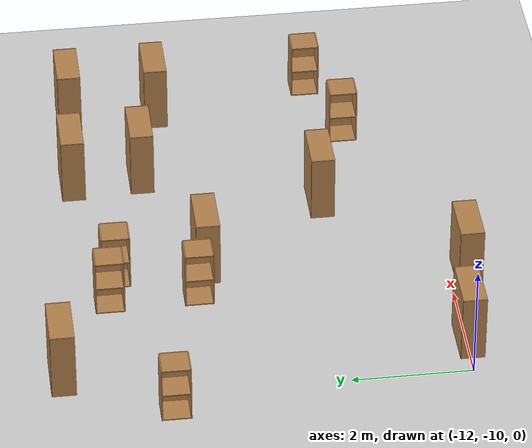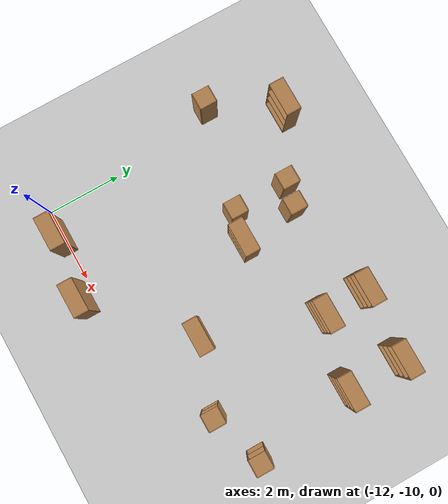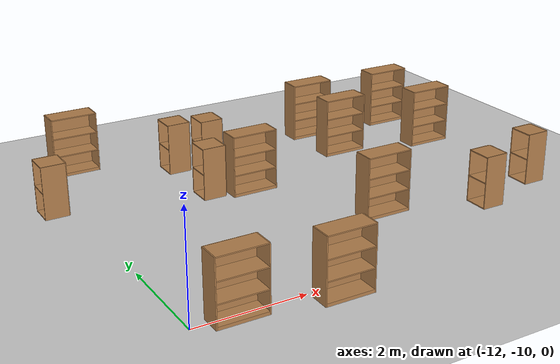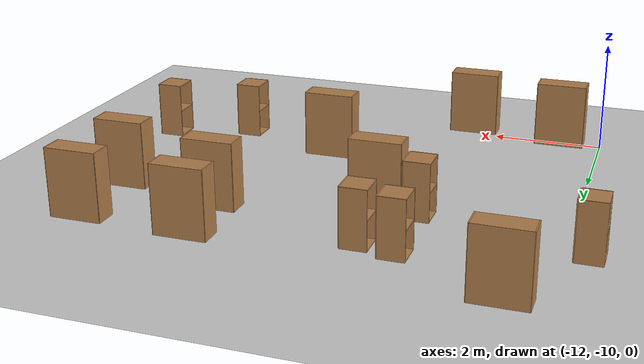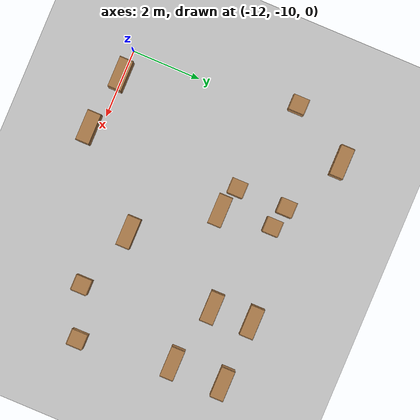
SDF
<sdf version="1.6">
 <world name="default">
  <model name="ground_plane">
   <static>1</static>
   <link name="link">
    <collision name="collision">
     <geometry><plane><normal>0 0 1</normal><size>100 100</size></plane></geometry>
     <surface><friction><ode><mu>100</mu><mu2>50</mu2></ode></friction></surface>
    </collision>
    <visual name="visual">
     <cast_shadows>0</cast_shadows>
     <geometry><plane><normal>0 0 1</normal><size>100 100</size></plane></geometry>
     <material>
      <script><uri>file://media/materials/scripts/gazebo.material</uri><name>Gazebo/Grey</name></script>
     </material>
    </visual>
   </link>
  </model>
  <model name="bookshelf_1">
   <static>1</static>
   <link name="link">
    <inertial><mass>1</mass></inertial>
    <collision name="back">
     <pose>0 0.005 0.6 0 -0 0</pose>
     <geometry><box><size>0.9 0.01 1.2</size></box></geometry>
    </collision>
    <visual name="visual1">
     <pose>0 0.005 0.6 0 -0 0</pose>
     <geometry><box><size>0.9 0.01 1.2</size></box></geometry>
     <material>
      <script><uri>file://media/materials/scripts/gazebo.material</uri><name>Gazebo/Wood</name></script>
     </material>
    </visual>
    <collision name="left_side">
     <pose>0.45 -0.195 0.6 0 -0 0</pose>
     <geometry><box><size>0.02 0.4 1.2</size></box></geometry>
    </collision>
    <visual name="visual2">
     <pose>0.45 -0.195 0.6 0 -0 0</pose>
     <geometry><box><size>0.02 0.4 1.2</size></box></geometry>
     <material>
      <script><uri>file://media/materials/scripts/gazebo.material</uri><name>Gazebo/Wood</name></script>
     </material>
    </visual>
    <collision name="right_side">
     <pose>-0.45 -0.195 0.6 0 -0 0</pose>
     <geometry><box><size>0.02 0.4 1.2</size></box></geometry>
    </collision>
    <visual name="visual3">
     <pose>-0.45 -0.195 0.6 0 -0 0</pose>
     <geometry><box><size>0.02 0.4 1.2</size></box></geometry>
     <material>
      <script><uri>file://media/materials/scripts/gazebo.material</uri><name>Gazebo/Wood</name></script>
     </material>
    </visual>
    <collision name="bottom">
     <pose>0 -0.195 0.03 0 -0 0</pose>
     <geometry><box><size>0.88 0.4 0.06</size></box></geometry>
    </collision>
    <visual name="visual4">
     <pose>0 -0.195 0.03 0 -0 0</pose>
     <geometry><box><size>0.88 0.4 0.06</size></box></geometry>
     <material>
      <script><uri>file://media/materials/scripts/gazebo.material</uri><name>Gazebo/Wood</name></script>
     </material>
    </visual>
    <collision name="top">
     <pose>0 -0.195 1.19 0 -0 0</pose>
     <geometry><box><size>0.88 0.4 0.02</size></box></geometry>
    </collision>
    <visual name="visual5">
     <pose>0 -0.195 1.19 0 -0 0</pose>
     <geometry><box><size>0.88 0.4 0.02</size></box></geometry>
     <material>
      <script><uri>file://media/materials/scripts/gazebo.material</uri><name>Gazebo/Wood</name></script>
     </material>
    </visual>
    <collision name="low_shelf">
     <pose>0 -0.195 0.43 0 -0 0</pose>
     <geometry><box><size>0.88 0.4 0.02</size></box></geometry>
    </collision>
    <visual name="visual6">
     <pose>0 -0.195 0.43 0 -0 0</pose>
     <geometry><box><size>0.88 0.4 0.02</size></box></geometry>
     <material>
      <script><uri>file://media/materials/scripts/gazebo.material</uri><name>Gazebo/Wood</name></script>
     </material>
    </visual>
    <collision name="high_shelf">
     <pose>0 -0.195 0.8 0 -0 0</pose>
     <geometry><box><size>0.88 0.4 0.02</size></box></geometry>
    </collision>
    <visual name="visual7">
     <pose>0 -0.195 0.8 0 -0 0</pose>
     <geometry><box><size>0.88 0.4 0.02</size></box></geometry>
     <material>
      <script><uri>file://media/materials/scripts/gazebo.material</uri><name>Gazebo/Wood</name></script>
     </material>
    </visual>
   </link>
   <pose>-11.2275 -9.84788 0 0 -0 0</pose>
  </model>
  <model name="bookshelf_3">
   <static>1</static>
   <link name="link">
    <inertial><mass>1</mass></inertial>
    <collision name="back">
     <pose>0 0.005 0.6 0 -0 0</pose>
     <geometry><box><size>0.9 0.01 1.2</size></box></geometry>
    </collision>
    <visual name="visual1">
     <pose>0 0.005 0.6 0 -0 0</pose>
     <geometry><box><size>0.9 0.01 1.2</size></box></geometry>
     <material>
      <script><uri>file://media/materials/scripts/gazebo.material</uri><name>Gazebo/Wood</name></script>
     </material>
    </visual>
    <collision name="left_side">
     <pose>0.45 -0.195 0.6 0 -0 0</pose>
     <geometry><box><size>0.02 0.4 1.2</size></box></geometry>
    </collision>
    <visual name="visual2">
     <pose>0.45 -0.195 0.6 0 -0 0</pose>
     <geometry><box><size>0.02 0.4 1.2</size></box></geometry>
     <material>
      <script><uri>file://media/materials/scripts/gazebo.material</uri><name>Gazebo/Wood</name></script>
     </material>
    </visual>
    <collision name="right_side">
     <pose>-0.45 -0.195 0.6 0 -0 0</pose>
     <geometry><box><size>0.02 0.4 1.2</size></box></geometry>
    </collision>
    <visual name="visual3">
     <pose>-0.45 -0.195 0.6 0 -0 0</pose>
     <geometry><box><size>0.02 0.4 1.2</size></box></geometry>
     <material>
      <script><uri>file://media/materials/scripts/gazebo.material</uri><name>Gazebo/Wood</name></script>
     </material>
    </visual>
    <collision name="bottom">
     <pose>0 -0.195 0.03 0 -0 0</pose>
     <geometry><box><size>0.88 0.4 0.06</size></box></geometry>
    </collision>
    <visual name="visual4">
     <pose>0 -0.195 0.03 0 -0 0</pose>
     <geometry><box><size>0.88 0.4 0.06</size></box></geometry>
     <material>
      <script><uri>file://media/materials/scripts/gazebo.material</uri><name>Gazebo/Wood</name></script>
     </material>
    </visual>
    <collision name="top">
     <pose>0 -0.195 1.19 0 -0 0</pose>
     <geometry><box><size>0.88 0.4 0.02</size></box></geometry>
    </collision>
    <visual name="visual5">
     <pose>0 -0.195 1.19 0 -0 0</pose>
     <geometry><box><size>0.88 0.4 0.02</size></box></geometry>
     <material>
      <script><uri>file://media/materials/scripts/gazebo.material</uri><name>Gazebo/Wood</name></script>
     </material>
    </visual>
    <collision name="low_shelf">
     <pose>0 -0.195 0.43 0 -0 0</pose>
     <geometry><box><size>0.88 0.4 0.02</size></box></geometry>
    </collision>
    <visual name="visual6">
     <pose>0 -0.195 0.43 0 -0 0</pose>
     <geometry><box><size>0.88 0.4 0.02</size></box></geometry>
     <material>
      <script><uri>file://media/materials/scripts/gazebo.material</uri><name>Gazebo/Wood</name></script>
     </material>
    </visual>
    <collision name="high_shelf">
     <pose>0 -0.195 0.8 0 -0 0</pose>
     <geometry><box><size>0.88 0.4 0.02</size></box></geometry>
    </collision>
    <visual name="visual7">
     <pose>0 -0.195 0.8 0 -0 0</pose>
     <geometry><box><size>0.88 0.4 0.02</size></box></geometry>
     <material>
      <script><uri>file://media/materials/scripts/gazebo.material</uri><name>Gazebo/Wood</name></script>
     </material>
    </visual>
   </link>
   <pose>-9.50662 -10.1006 0 0 -0 0</pose>
  </model>
  <model name="cabinet_4">
   <static>1</static>
   <link name="cabinet_bottom_plate">
    <inertial>
     <pose>0 0 -1 0 -0 0</pose>
     <inertia><ixx>2.05</ixx><ixy>0</ixy><ixz>0</ixz><iyy>2.05</iyy><iyz>0</iyz><izz>2.05</izz></inertia>
     <mass>25</mass>
    </inertial>
    <collision name="cabinet_bottom_plate_geom">
     <pose>0 0 0.01 0 -0 0</pose>
     <geometry><box><size>0.45 0.45 0.02</size></box></geometry>
    </collision>
    <visual name="cabinet_bottom_plate_geom_visual">
     <pose>0 0 0.01 0 -0 0</pose>
     <geometry><box><size>0.45 0.45 0.02</size></box></geometry>
     <material>
      <script><uri>file://media/materials/scripts/gazebo.material</uri><name>Gazebo/Wood</name></script>
     </material>
    </visual>
    <collision name="cabinet_bottom_plate_geom_cabinet_back_plate">
     <pose>0.235 0 0.51 0 -0 0</pose>
     <geometry><box><size>0.02 0.45 1.02</size></box></geometry>
    </collision>
    <visual name="cabinet_bottom_plate_geom_cabinet_back_plate_visual">
     <pose>0.235 0 0.51 0 -0 0</pose>
     <geometry><box><size>0.02 0.45 1.02</size></box></geometry>
     <material>
      <script><uri>file://media/materials/scripts/gazebo.material</uri><name>Gazebo/Wood</name></script>
     </material>
    </visual>
    <collision name="cabinet_bottom_plate_geom_cabinet_left_plate">
     <pose>0 0.235 0.51 0 -0 0</pose>
     <geometry><box><size>0.45 0.02 1.02</size></box></geometry>
    </collision>
    <visual name="cabinet_bottom_plate_geom_cabinet_left_plate_visual">
     <pose>0 0.235 0.51 0 -0 0</pose>
     <geometry><box><size>0.45 0.02 1.02</size></box></geometry>
     <material>
      <script><uri>file://media/materials/scripts/gazebo.material</uri><name>Gazebo/Wood</name></script>
     </material>
    </visual>
    <collision name="cabinet_bottom_plate_geom_cabinet_middle_plate">
     <pose>0 0 0.51 0 -0 0</pose>
     <geometry><box><size>0.45 0.45 0.02</size></box></geometry>
    </collision>
    <visual name="cabinet_bottom_plate_geom_cabinet_middle_plate_visual">
     <pose>0 0 0.51 0 -0 0</pose>
     <geometry><box><size>0.45 0.45 0.02</size></box></geometry>
     <material>
      <script><uri>file://media/materials/scripts/gazebo.material</uri><name>Gazebo/Wood</name></script>
     </material>
    </visual>
    <collision name="cabinet_bottom_plate_geom_cabinet_right_plate">
     <pose>0 -0.235 0.51 0 -0 0</pose>
     <geometry><box><size>0.45 0.02 1.02</size></box></geometry>
    </collision>
    <visual name="cabinet_bottom_plate_geom_cabinet_right_plate_visual">
     <pose>0 -0.235 0.51 0 -0 0</pose>
     <geometry><box><size>0.45 0.02 1.02</size></box></geometry>
     <material>
      <script><uri>file://media/materials/scripts/gazebo.material</uri><name>Gazebo/Wood</name></script>
     </material>
    </visual>
    <collision name="cabinet_bottom_plate_geom_cabinet_top_plate">
     <pose>0 0 1.01 0 -0 0</pose>
     <geometry><box><size>0.45 0.45 0.02</size></box></geometry>
    </collision>
    <visual name="cabinet_bottom_plate_geom_cabinet_top_plate_visual">
     <pose>0 0 1.01 0 -0 0</pose>
     <geometry><box><size>0.45 0.45 0.02</size></box></geometry>
     <material>
      <script><uri>file://media/materials/scripts/gazebo.material</uri><name>Gazebo/Wood</name></script>
     </material>
    </visual>
   </link>
   <pose>-3.89679 -8.28342 0 0 -0 0</pose>
  </model>
  <model name="cabinet_5">
   <static>1</static>
   <link name="cabinet_bottom_plate">
    <inertial>
     <pose>0 0 -1 0 -0 0</pose>
     <inertia><ixx>2.05</ixx><ixy>0</ixy><ixz>0</ixz><iyy>2.05</iyy><iyz>0</iyz><izz>2.05</izz></inertia>
     <mass>25</mass>
    </inertial>
    <collision name="cabinet_bottom_plate_geom">
     <pose>0 0 0.01 0 -0 0</pose>
     <geometry><box><size>0.45 0.45 0.02</size></box></geometry>
    </collision>
    <visual name="cabinet_bottom_plate_geom_visual">
     <pose>0 0 0.01 0 -0 0</pose>
     <geometry><box><size>0.45 0.45 0.02</size></box></geometry>
     <material>
      <script><uri>file://media/materials/scripts/gazebo.material</uri><name>Gazebo/Wood</name></script>
     </material>
    </visual>
    <collision name="cabinet_bottom_plate_geom_cabinet_back_plate">
     <pose>0.235 0 0.51 0 -0 0</pose>
     <geometry><box><size>0.02 0.45 1.02</size></box></geometry>
    </collision>
    <visual name="cabinet_bottom_plate_geom_cabinet_back_plate_visual">
     <pose>0.235 0 0.51 0 -0 0</pose>
     <geometry><box><size>0.02 0.45 1.02</size></box></geometry>
     <material>
      <script><uri>file://media/materials/scripts/gazebo.material</uri><name>Gazebo/Wood</name></script>
     </material>
    </visual>
    <collision name="cabinet_bottom_plate_geom_cabinet_left_plate">
     <pose>0 0.235 0.51 0 -0 0</pose>
     <geometry><box><size>0.45 0.02 1.02</size></box></geometry>
    </collision>
    <visual name="cabinet_bottom_plate_geom_cabinet_left_plate_visual">
     <pose>0 0.235 0.51 0 -0 0</pose>
     <geometry><box><size>0.45 0.02 1.02</size></box></geometry>
     <material>
      <script><uri>file://media/materials/scripts/gazebo.material</uri><name>Gazebo/Wood</name></script>
     </material>
    </visual>
    <collision name="cabinet_bottom_plate_geom_cabinet_middle_plate">
     <pose>0 0 0.51 0 -0 0</pose>
     <geometry><box><size>0.45 0.45 0.02</size></box></geometry>
    </collision>
    <visual name="cabinet_bottom_plate_geom_cabinet_middle_plate_visual">
     <pose>0 0 0.51 0 -0 0</pose>
     <geometry><box><size>0.45 0.45 0.02</size></box></geometry>
     <material>
      <script><uri>file://media/materials/scripts/gazebo.material</uri><name>Gazebo/Wood</name></script>
     </material>
    </visual>
    <collision name="cabinet_bottom_plate_geom_cabinet_right_plate">
     <pose>0 -0.235 0.51 0 -0 0</pose>
     <geometry><box><size>0.45 0.02 1.02</size></box></geometry>
    </collision>
    <visual name="cabinet_bottom_plate_geom_cabinet_right_plate_visual">
     <pose>0 -0.235 0.51 0 -0 0</pose>
     <geometry><box><size>0.45 0.02 1.02</size></box></geometry>
     <material>
      <script><uri>file://media/materials/scripts/gazebo.material</uri><name>Gazebo/Wood</name></script>
     </material>
    </visual>
    <collision name="cabinet_bottom_plate_geom_cabinet_top_plate">
     <pose>0 0 1.01 0 -0 0</pose>
     <geometry><box><size>0.45 0.45 0.02</size></box></geometry>
    </collision>
    <visual name="cabinet_bottom_plate_geom_cabinet_top_plate_visual">
     <pose>0 0 1.01 0 -0 0</pose>
     <geometry><box><size>0.45 0.45 0.02</size></box></geometry>
     <material>
      <script><uri>file://media/materials/scripts/gazebo.material</uri><name>Gazebo/Wood</name></script>
     </material>
    </visual>
   </link>
   <pose>-5.3525 -8.76287 0 0 -0 0</pose>
  </model>
  <model name="bookshelf_16">
   <static>1</static>
   <link name="link">
    <inertial><mass>1</mass></inertial>
    <collision name="back">
     <pose>0 0.005 0.6 0 -0 0</pose>
     <geometry><box><size>0.9 0.01 1.2</size></box></geometry>
    </collision>
    <visual name="visual1">
     <pose>0 0.005 0.6 0 -0 0</pose>
     <geometry><box><size>0.9 0.01 1.2</size></box></geometry>
     <material>
      <script><uri>file://media/materials/scripts/gazebo.material</uri><name>Gazebo/Wood</name></script>
     </material>
    </visual>
    <collision name="left_side">
     <pose>0.45 -0.195 0.6 0 -0 0</pose>
     <geometry><box><size>0.02 0.4 1.2</size></box></geometry>
    </collision>
    <visual name="visual2">
     <pose>0.45 -0.195 0.6 0 -0 0</pose>
     <geometry><box><size>0.02 0.4 1.2</size></box></geometry>
     <material>
      <script><uri>file://media/materials/scripts/gazebo.material</uri><name>Gazebo/Wood</name></script>
     </material>
    </visual>
    <collision name="right_side">
     <pose>-0.45 -0.195 0.6 0 -0 0</pose>
     <geometry><box><size>0.02 0.4 1.2</size></box></geometry>
    </collision>
    <visual name="visual3">
     <pose>-0.45 -0.195 0.6 0 -0 0</pose>
     <geometry><box><size>0.02 0.4 1.2</size></box></geometry>
     <material>
      <script><uri>file://media/materials/scripts/gazebo.material</uri><name>Gazebo/Wood</name></script>
     </material>
    </visual>
    <collision name="bottom">
     <pose>0 -0.195 0.03 0 -0 0</pose>
     <geometry><box><size>0.88 0.4 0.06</size></box></geometry>
    </collision>
    <visual name="visual4">
     <pose>0 -0.195 0.03 0 -0 0</pose>
     <geometry><box><size>0.88 0.4 0.06</size></box></geometry>
     <material>
      <script><uri>file://media/materials/scripts/gazebo.material</uri><name>Gazebo/Wood</name></script>
     </material>
    </visual>
    <collision name="top">
     <pose>0 -0.195 1.19 0 -0 0</pose>
     <geometry><box><size>0.88 0.4 0.02</size></box></geometry>
    </collision>
    <visual name="visual5">
     <pose>0 -0.195 1.19 0 -0 0</pose>
     <geometry><box><size>0.88 0.4 0.02</size></box></geometry>
     <material>
      <script><uri>file://media/materials/scripts/gazebo.material</uri><name>Gazebo/Wood</name></script>
     </material>
    </visual>
    <collision name="low_shelf">
     <pose>0 -0.195 0.43 0 -0 0</pose>
     <geometry><box><size>0.88 0.4 0.02</size></box></geometry>
    </collision>
    <visual name="visual6">
     <pose>0 -0.195 0.43 0 -0 0</pose>
     <geometry><box><size>0.88 0.4 0.02</size></box></geometry>
     <material>
      <script><uri>file://media/materials/scripts/gazebo.material</uri><name>Gazebo/Wood</name></script>
     </material>
    </visual>
    <collision name="high_shelf">
     <pose>0 -0.195 0.8 0 -0 0</pose>
     <geometry><box><size>0.88 0.4 0.02</size></box></geometry>
    </collision>
    <visual name="visual7">
     <pose>0 -0.195 0.8 0 -0 0</pose>
     <geometry><box><size>0.88 0.4 0.02</size></box></geometry>
     <material>
      <script><uri>file://media/materials/scripts/gazebo.material</uri><name>Gazebo/Wood</name></script>
     </material>
    </visual>
   </link>
   <pose>-7.23256 -7.92648 0 0 -0 0</pose>
  </model>
  <model name="bookshelf_21">
   <static>1</static>
   <link name="link">
    <inertial><mass>1</mass></inertial>
    <collision name="back">
     <pose>0 0.005 0.6 0 -0 0</pose>
     <geometry><box><size>0.9 0.01 1.2</size></box></geometry>
    </collision>
    <visual name="visual1">
     <pose>0 0.005 0.6 0 -0 0</pose>
     <geometry><box><size>0.9 0.01 1.2</size></box></geometry>
     <material>
      <script><uri>file://media/materials/scripts/gazebo.material</uri><name>Gazebo/Wood</name></script>
     </material>
    </visual>
    <collision name="left_side">
     <pose>0.45 -0.195 0.6 0 -0 0</pose>
     <geometry><box><size>0.02 0.4 1.2</size></box></geometry>
    </collision>
    <visual name="visual2">
     <pose>0.45 -0.195 0.6 0 -0 0</pose>
     <geometry><box><size>0.02 0.4 1.2</size></box></geometry>
     <material>
      <script><uri>file://media/materials/scripts/gazebo.material</uri><name>Gazebo/Wood</name></script>
     </material>
    </visual>
    <collision name="right_side">
     <pose>-0.45 -0.195 0.6 0 -0 0</pose>
     <geometry><box><size>0.02 0.4 1.2</size></box></geometry>
    </collision>
    <visual name="visual3">
     <pose>-0.45 -0.195 0.6 0 -0 0</pose>
     <geometry><box><size>0.02 0.4 1.2</size></box></geometry>
     <material>
      <script><uri>file://media/materials/scripts/gazebo.material</uri><name>Gazebo/Wood</name></script>
     </material>
    </visual>
    <collision name="bottom">
     <pose>0 -0.195 0.03 0 -0 0</pose>
     <geometry><box><size>0.88 0.4 0.06</size></box></geometry>
    </collision>
    <visual name="visual4">
     <pose>0 -0.195 0.03 0 -0 0</pose>
     <geometry><box><size>0.88 0.4 0.06</size></box></geometry>
     <material>
      <script><uri>file://media/materials/scripts/gazebo.material</uri><name>Gazebo/Wood</name></script>
     </material>
    </visual>
    <collision name="top">
     <pose>0 -0.195 1.19 0 -0 0</pose>
     <geometry><box><size>0.88 0.4 0.02</size></box></geometry>
    </collision>
    <visual name="visual5">
     <pose>0 -0.195 1.19 0 -0 0</pose>
     <geometry><box><size>0.88 0.4 0.02</size></box></geometry>
     <material>
      <script><uri>file://media/materials/scripts/gazebo.material</uri><name>Gazebo/Wood</name></script>
     </material>
    </visual>
    <collision name="low_shelf">
     <pose>0 -0.195 0.43 0 -0 0</pose>
     <geometry><box><size>0.88 0.4 0.02</size></box></geometry>
    </collision>
    <visual name="visual6">
     <pose>0 -0.195 0.43 0 -0 0</pose>
     <geometry><box><size>0.88 0.4 0.02</size></box></geometry>
     <material>
      <script><uri>file://media/materials/scripts/gazebo.material</uri><name>Gazebo/Wood</name></script>
     </material>
    </visual>
    <collision name="high_shelf">
     <pose>0 -0.195 0.8 0 -0 0</pose>
     <geometry><box><size>0.88 0.4 0.02</size></box></geometry>
    </collision>
    <visual name="visual7">
     <pose>0 -0.195 0.8 0 -0 0</pose>
     <geometry><box><size>0.88 0.4 0.02</size></box></geometry>
     <material>
      <script><uri>file://media/materials/scripts/gazebo.material</uri><name>Gazebo/Wood</name></script>
     </material>
    </visual>
   </link>
   <pose>-11.361 -3.17094 0 0 -0 0</pose>
  </model>
  <model name="cabinet_6">
   <static>1</static>
   <link name="cabinet_bottom_plate">
    <inertial>
     <pose>0 0 -1 0 -0 0</pose>
     <inertia><ixx>2.05</ixx><ixy>0</ixy><ixz>0</ixz><iyy>2.05</iyy><iyz>0</iyz><izz>2.05</izz></inertia>
     <mass>25</mass>
    </inertial>
    <collision name="cabinet_bottom_plate_geom">
     <pose>0 0 0.01 0 -0 0</pose>
     <geometry><box><size>0.45 0.45 0.02</size></box></geometry>
    </collision>
    <visual name="cabinet_bottom_plate_geom_visual">
     <pose>0 0 0.01 0 -0 0</pose>
     <geometry><box><size>0.45 0.45 0.02</size></box></geometry>
     <material>
      <script><uri>file://media/materials/scripts/gazebo.material</uri><name>Gazebo/Wood</name></script>
     </material>
    </visual>
    <collision name="cabinet_bottom_plate_geom_cabinet_back_plate">
     <pose>0.235 0 0.51 0 -0 0</pose>
     <geometry><box><size>0.02 0.45 1.02</size></box></geometry>
    </collision>
    <visual name="cabinet_bottom_plate_geom_cabinet_back_plate_visual">
     <pose>0.235 0 0.51 0 -0 0</pose>
     <geometry><box><size>0.02 0.45 1.02</size></box></geometry>
     <material>
      <script><uri>file://media/materials/scripts/gazebo.material</uri><name>Gazebo/Wood</name></script>
     </material>
    </visual>
    <collision name="cabinet_bottom_plate_geom_cabinet_left_plate">
     <pose>0 0.235 0.51 0 -0 0</pose>
     <geometry><box><size>0.45 0.02 1.02</size></box></geometry>
    </collision>
    <visual name="cabinet_bottom_plate_geom_cabinet_left_plate_visual">
     <pose>0 0.235 0.51 0 -0 0</pose>
     <geometry><box><size>0.45 0.02 1.02</size></box></geometry>
     <material>
      <script><uri>file://media/materials/scripts/gazebo.material</uri><name>Gazebo/Wood</name></script>
     </material>
    </visual>
    <collision name="cabinet_bottom_plate_geom_cabinet_middle_plate">
     <pose>0 0 0.51 0 -0 0</pose>
     <geometry><box><size>0.45 0.45 0.02</size></box></geometry>
    </collision>
    <visual name="cabinet_bottom_plate_geom_cabinet_middle_plate_visual">
     <pose>0 0 0.51 0 -0 0</pose>
     <geometry><box><size>0.45 0.45 0.02</size></box></geometry>
     <material>
      <script><uri>file://media/materials/scripts/gazebo.material</uri><name>Gazebo/Wood</name></script>
     </material>
    </visual>
    <collision name="cabinet_bottom_plate_geom_cabinet_right_plate">
     <pose>0 -0.235 0.51 0 -0 0</pose>
     <geometry><box><size>0.45 0.02 1.02</size></box></geometry>
    </collision>
    <visual name="cabinet_bottom_plate_geom_cabinet_right_plate_visual">
     <pose>0 -0.235 0.51 0 -0 0</pose>
     <geometry><box><size>0.45 0.02 1.02</size></box></geometry>
     <material>
      <script><uri>file://media/materials/scripts/gazebo.material</uri><name>Gazebo/Wood</name></script>
     </material>
    </visual>
    <collision name="cabinet_bottom_plate_geom_cabinet_top_plate">
     <pose>0 0 1.01 0 -0 0</pose>
     <geometry><box><size>0.45 0.45 0.02</size></box></geometry>
    </collision>
    <visual name="cabinet_bottom_plate_geom_cabinet_top_plate_visual">
     <pose>0 0 1.01 0 -0 0</pose>
     <geometry><box><size>0.45 0.45 0.02</size></box></geometry>
     <material>
      <script><uri>file://media/materials/scripts/gazebo.material</uri><name>Gazebo/Wood</name></script>
     </material>
    </visual>
   </link>
   <pose>-12.3886 -5.10227 0 0 -0 0</pose>
  </model>
  <model name="cabinet_7">
   <static>1</static>
   <link name="cabinet_bottom_plate">
    <inertial>
     <pose>0 0 -1 0 -0 0</pose>
     <inertia><ixx>2.05</ixx><ixy>0</ixy><ixz>0</ixz><iyy>2.05</iyy><iyz>0</iyz><izz>2.05</izz></inertia>
     <mass>25</mass>
    </inertial>
    <collision name="cabinet_bottom_plate_geom">
     <pose>0 0 0.01 0 -0 0</pose>
     <geometry><box><size>0.45 0.45 0.02</size></box></geometry>
    </collision>
    <visual name="cabinet_bottom_plate_geom_visual">
     <pose>0 0 0.01 0 -0 0</pose>
     <geometry><box><size>0.45 0.45 0.02</size></box></geometry>
     <material>
      <script><uri>file://media/materials/scripts/gazebo.material</uri><name>Gazebo/Wood</name></script>
     </material>
    </visual>
    <collision name="cabinet_bottom_plate_geom_cabinet_back_plate">
     <pose>0.235 0 0.51 0 -0 0</pose>
     <geometry><box><size>0.02 0.45 1.02</size></box></geometry>
    </collision>
    <visual name="cabinet_bottom_plate_geom_cabinet_back_plate_visual">
     <pose>0.235 0 0.51 0 -0 0</pose>
     <geometry><box><size>0.02 0.45 1.02</size></box></geometry>
     <material>
      <script><uri>file://media/materials/scripts/gazebo.material</uri><name>Gazebo/Wood</name></script>
     </material>
    </visual>
    <collision name="cabinet_bottom_plate_geom_cabinet_left_plate">
     <pose>0 0.235 0.51 0 -0 0</pose>
     <geometry><box><size>0.45 0.02 1.02</size></box></geometry>
    </collision>
    <visual name="cabinet_bottom_plate_geom_cabinet_left_plate_visual">
     <pose>0 0.235 0.51 0 -0 0</pose>
     <geometry><box><size>0.45 0.02 1.02</size></box></geometry>
     <material>
      <script><uri>file://media/materials/scripts/gazebo.material</uri><name>Gazebo/Wood</name></script>
     </material>
    </visual>
    <collision name="cabinet_bottom_plate_geom_cabinet_middle_plate">
     <pose>0 0 0.51 0 -0 0</pose>
     <geometry><box><size>0.45 0.45 0.02</size></box></geometry>
    </collision>
    <visual name="cabinet_bottom_plate_geom_cabinet_middle_plate_visual">
     <pose>0 0 0.51 0 -0 0</pose>
     <geometry><box><size>0.45 0.45 0.02</size></box></geometry>
     <material>
      <script><uri>file://media/materials/scripts/gazebo.material</uri><name>Gazebo/Wood</name></script>
     </material>
    </visual>
    <collision name="cabinet_bottom_plate_geom_cabinet_right_plate">
     <pose>0 -0.235 0.51 0 -0 0</pose>
     <geometry><box><size>0.45 0.02 1.02</size></box></geometry>
    </collision>
    <visual name="cabinet_bottom_plate_geom_cabinet_right_plate_visual">
     <pose>0 -0.235 0.51 0 -0 0</pose>
     <geometry><box><size>0.45 0.02 1.02</size></box></geometry>
     <material>
      <script><uri>file://media/materials/scripts/gazebo.material</uri><name>Gazebo/Wood</name></script>
     </material>
    </visual>
    <collision name="cabinet_bottom_plate_geom_cabinet_top_plate">
     <pose>0 0 1.01 0 -0 0</pose>
     <geometry><box><size>0.45 0.45 0.02</size></box></geometry>
    </collision>
    <visual name="cabinet_bottom_plate_geom_cabinet_top_plate_visual">
     <pose>0 0 1.01 0 -0 0</pose>
     <geometry><box><size>0.45 0.45 0.02</size></box></geometry>
     <material>
      <script><uri>file://media/materials/scripts/gazebo.material</uri><name>Gazebo/Wood</name></script>
     </material>
    </visual>
   </link>
   <pose>-9.56047 -5.78191 0 0 -0 0</pose>
  </model>
  <model name="cabinet_8">
   <static>1</static>
   <link name="cabinet_bottom_plate">
    <inertial>
     <pose>0 0 -1 0 -0 0</pose>
     <inertia><ixx>2.05</ixx><ixy>0</ixy><ixz>0</ixz><iyy>2.05</iyy><iyz>0</iyz><izz>2.05</izz></inertia>
     <mass>25</mass>
    </inertial>
    <collision name="cabinet_bottom_plate_geom">
     <pose>0 0 0.01 0 -0 0</pose>
     <geometry><box><size>0.45 0.45 0.02</size></box></geometry>
    </collision>
    <visual name="cabinet_bottom_plate_geom_visual">
     <pose>0 0 0.01 0 -0 0</pose>
     <geometry><box><size>0.45 0.45 0.02</size></box></geometry>
     <material>
      <script><uri>file://media/materials/scripts/gazebo.material</uri><name>Gazebo/Wood</name></script>
     </material>
    </visual>
    <collision name="cabinet_bottom_plate_geom_cabinet_back_plate">
     <pose>0.235 0 0.51 0 -0 0</pose>
     <geometry><box><size>0.02 0.45 1.02</size></box></geometry>
    </collision>
    <visual name="cabinet_bottom_plate_geom_cabinet_back_plate_visual">
     <pose>0.235 0 0.51 0 -0 0</pose>
     <geometry><box><size>0.02 0.45 1.02</size></box></geometry>
     <material>
      <script><uri>file://media/materials/scripts/gazebo.material</uri><name>Gazebo/Wood</name></script>
     </material>
    </visual>
    <collision name="cabinet_bottom_plate_geom_cabinet_left_plate">
     <pose>0 0.235 0.51 0 -0 0</pose>
     <geometry><box><size>0.45 0.02 1.02</size></box></geometry>
    </collision>
    <visual name="cabinet_bottom_plate_geom_cabinet_left_plate_visual">
     <pose>0 0.235 0.51 0 -0 0</pose>
     <geometry><box><size>0.45 0.02 1.02</size></box></geometry>
     <material>
      <script><uri>file://media/materials/scripts/gazebo.material</uri><name>Gazebo/Wood</name></script>
     </material>
    </visual>
    <collision name="cabinet_bottom_plate_geom_cabinet_middle_plate">
     <pose>0 0 0.51 0 -0 0</pose>
     <geometry><box><size>0.45 0.45 0.02</size></box></geometry>
    </collision>
    <visual name="cabinet_bottom_plate_geom_cabinet_middle_plate_visual">
     <pose>0 0 0.51 0 -0 0</pose>
     <geometry><box><size>0.45 0.45 0.02</size></box></geometry>
     <material>
      <script><uri>file://media/materials/scripts/gazebo.material</uri><name>Gazebo/Wood</name></script>
     </material>
    </visual>
    <collision name="cabinet_bottom_plate_geom_cabinet_right_plate">
     <pose>0 -0.235 0.51 0 -0 0</pose>
     <geometry><box><size>0.45 0.02 1.02</size></box></geometry>
    </collision>
    <visual name="cabinet_bottom_plate_geom_cabinet_right_plate_visual">
     <pose>0 -0.235 0.51 0 -0 0</pose>
     <geometry><box><size>0.45 0.02 1.02</size></box></geometry>
     <material>
      <script><uri>file://media/materials/scripts/gazebo.material</uri><name>Gazebo/Wood</name></script>
     </material>
    </visual>
    <collision name="cabinet_bottom_plate_geom_cabinet_top_plate">
     <pose>0 0 1.01 0 -0 0</pose>
     <geometry><box><size>0.45 0.45 0.02</size></box></geometry>
    </collision>
    <visual name="cabinet_bottom_plate_geom_cabinet_top_plate_visual">
     <pose>0 0 1.01 0 -0 0</pose>
     <geometry><box><size>0.45 0.45 0.02</size></box></geometry>
     <material>
      <script><uri>file://media/materials/scripts/gazebo.material</uri><name>Gazebo/Wood</name></script>
     </material>
    </visual>
   </link>
   <pose>-9.58503 -4.29442 0 0 -0 0</pose>
  </model>
  <model name="bookshelf_22">
   <static>1</static>
   <link name="link">
    <inertial><mass>1</mass></inertial>
    <collision name="back">
     <pose>0 0.005 0.6 0 -0 0</pose>
     <geometry><box><size>0.9 0.01 1.2</size></box></geometry>
    </collision>
    <visual name="visual1">
     <pose>0 0.005 0.6 0 -0 0</pose>
     <geometry><box><size>0.9 0.01 1.2</size></box></geometry>
     <material>
      <script><uri>file://media/materials/scripts/gazebo.material</uri><name>Gazebo/Wood</name></script>
     </material>
    </visual>
    <collision name="left_side">
     <pose>0.45 -0.195 0.6 0 -0 0</pose>
     <geometry><box><size>0.02 0.4 1.2</size></box></geometry>
    </collision>
    <visual name="visual2">
     <pose>0.45 -0.195 0.6 0 -0 0</pose>
     <geometry><box><size>0.02 0.4 1.2</size></box></geometry>
     <material>
      <script><uri>file://media/materials/scripts/gazebo.material</uri><name>Gazebo/Wood</name></script>
     </material>
    </visual>
    <collision name="right_side">
     <pose>-0.45 -0.195 0.6 0 -0 0</pose>
     <geometry><box><size>0.02 0.4 1.2</size></box></geometry>
    </collision>
    <visual name="visual3">
     <pose>-0.45 -0.195 0.6 0 -0 0</pose>
     <geometry><box><size>0.02 0.4 1.2</size></box></geometry>
     <material>
      <script><uri>file://media/materials/scripts/gazebo.material</uri><name>Gazebo/Wood</name></script>
     </material>
    </visual>
    <collision name="bottom">
     <pose>0 -0.195 0.03 0 -0 0</pose>
     <geometry><box><size>0.88 0.4 0.06</size></box></geometry>
    </collision>
    <visual name="visual4">
     <pose>0 -0.195 0.03 0 -0 0</pose>
     <geometry><box><size>0.88 0.4 0.06</size></box></geometry>
     <material>
      <script><uri>file://media/materials/scripts/gazebo.material</uri><name>Gazebo/Wood</name></script>
     </material>
    </visual>
    <collision name="top">
     <pose>0 -0.195 1.19 0 -0 0</pose>
     <geometry><box><size>0.88 0.4 0.02</size></box></geometry>
    </collision>
    <visual name="visual5">
     <pose>0 -0.195 1.19 0 -0 0</pose>
     <geometry><box><size>0.88 0.4 0.02</size></box></geometry>
     <material>
      <script><uri>file://media/materials/scripts/gazebo.material</uri><name>Gazebo/Wood</name></script>
     </material>
    </visual>
    <collision name="low_shelf">
     <pose>0 -0.195 0.43 0 -0 0</pose>
     <geometry><box><size>0.88 0.4 0.02</size></box></geometry>
    </collision>
    <visual name="visual6">
     <pose>0 -0.195 0.43 0 -0 0</pose>
     <geometry><box><size>0.88 0.4 0.02</size></box></geometry>
     <material>
      <script><uri>file://media/materials/scripts/gazebo.material</uri><name>Gazebo/Wood</name></script>
     </material>
    </visual>
    <collision name="high_shelf">
     <pose>0 -0.195 0.8 0 -0 0</pose>
     <geometry><box><size>0.88 0.4 0.02</size></box></geometry>
    </collision>
    <visual name="visual7">
     <pose>0 -0.195 0.8 0 -0 0</pose>
     <geometry><box><size>0.88 0.4 0.02</size></box></geometry>
     <material>
      <script><uri>file://media/materials/scripts/gazebo.material</uri><name>Gazebo/Wood</name></script>
     </material>
    </visual>
   </link>
   <pose>-8.78498 -5.79268 0 0 -0 0</pose>
  </model>
  <model name="cabinet_16">
   <static>1</static>
   <link name="cabinet_bottom_plate">
    <inertial>
     <pose>0 0 -1 0 -0 0</pose>
     <inertia><ixx>2.05</ixx><ixy>0</ixy><ixz>0</ixz><iyy>2.05</iyy><iyz>0</iyz><izz>2.05</izz></inertia>
     <mass>25</mass>
    </inertial>
    <collision name="cabinet_bottom_plate_geom">
     <pose>0 0 0.01 0 -0 0</pose>
     <geometry><box><size>0.45 0.45 0.02</size></box></geometry>
    </collision>
    <visual name="cabinet_bottom_plate_geom_visual">
     <pose>0 0 0.01 0 -0 0</pose>
     <geometry><box><size>0.45 0.45 0.02</size></box></geometry>
     <material>
      <script><uri>file://media/materials/scripts/gazebo.material</uri><name>Gazebo/Wood</name></script>
     </material>
    </visual>
    <collision name="cabinet_bottom_plate_geom_cabinet_back_plate">
     <pose>0.235 0 0.51 0 -0 0</pose>
     <geometry><box><size>0.02 0.45 1.02</size></box></geometry>
    </collision>
    <visual name="cabinet_bottom_plate_geom_cabinet_back_plate_visual">
     <pose>0.235 0 0.51 0 -0 0</pose>
     <geometry><box><size>0.02 0.45 1.02</size></box></geometry>
     <material>
      <script><uri>file://media/materials/scripts/gazebo.material</uri><name>Gazebo/Wood</name></script>
     </material>
    </visual>
    <collision name="cabinet_bottom_plate_geom_cabinet_left_plate">
     <pose>0 0.235 0.51 0 -0 0</pose>
     <geometry><box><size>0.45 0.02 1.02</size></box></geometry>
    </collision>
    <visual name="cabinet_bottom_plate_geom_cabinet_left_plate_visual">
     <pose>0 0.235 0.51 0 -0 0</pose>
     <geometry><box><size>0.45 0.02 1.02</size></box></geometry>
     <material>
      <script><uri>file://media/materials/scripts/gazebo.material</uri><name>Gazebo/Wood</name></script>
     </material>
    </visual>
    <collision name="cabinet_bottom_plate_geom_cabinet_middle_plate">
     <pose>0 0 0.51 0 -0 0</pose>
     <geometry><box><size>0.45 0.45 0.02</size></box></geometry>
    </collision>
    <visual name="cabinet_bottom_plate_geom_cabinet_middle_plate_visual">
     <pose>0 0 0.51 0 -0 0</pose>
     <geometry><box><size>0.45 0.45 0.02</size></box></geometry>
     <material>
      <script><uri>file://media/materials/scripts/gazebo.material</uri><name>Gazebo/Wood</name></script>
     </material>
    </visual>
    <collision name="cabinet_bottom_plate_geom_cabinet_right_plate">
     <pose>0 -0.235 0.51 0 -0 0</pose>
     <geometry><box><size>0.45 0.02 1.02</size></box></geometry>
    </collision>
    <visual name="cabinet_bottom_plate_geom_cabinet_right_plate_visual">
     <pose>0 -0.235 0.51 0 -0 0</pose>
     <geometry><box><size>0.45 0.02 1.02</size></box></geometry>
     <material>
      <script><uri>file://media/materials/scripts/gazebo.material</uri><name>Gazebo/Wood</name></script>
     </material>
    </visual>
    <collision name="cabinet_bottom_plate_geom_cabinet_top_plate">
     <pose>0 0 1.01 0 -0 0</pose>
     <geometry><box><size>0.45 0.45 0.02</size></box></geometry>
    </collision>
    <visual name="cabinet_bottom_plate_geom_cabinet_top_plate_visual">
     <pose>0 0 1.01 0 -0 0</pose>
     <geometry><box><size>0.45 0.45 0.02</size></box></geometry>
     <material>
      <script><uri>file://media/materials/scripts/gazebo.material</uri><name>Gazebo/Wood</name></script>
     </material>
    </visual>
   </link>
   <pose>-8.94036 -4.44904 0 0 -0 0</pose>
  </model>
  <model name="bookshelf_26">
   <static>1</static>
   <link name="link">
    <inertial><mass>1</mass></inertial>
    <collision name="back">
     <pose>0 0.005 0.6 0 -0 0</pose>
     <geometry><box><size>0.9 0.01 1.2</size></box></geometry>
    </collision>
    <visual name="visual1">
     <pose>0 0.005 0.6 0 -0 0</pose>
     <geometry><box><size>0.9 0.01 1.2</size></box></geometry>
     <material>
      <script><uri>file://media/materials/scripts/gazebo.material</uri><name>Gazebo/Wood</name></script>
     </material>
    </visual>
    <collision name="left_side">
     <pose>0.45 -0.195 0.6 0 -0 0</pose>
     <geometry><box><size>0.02 0.4 1.2</size></box></geometry>
    </collision>
    <visual name="visual2">
     <pose>0.45 -0.195 0.6 0 -0 0</pose>
     <geometry><box><size>0.02 0.4 1.2</size></box></geometry>
     <material>
      <script><uri>file://media/materials/scripts/gazebo.material</uri><name>Gazebo/Wood</name></script>
     </material>
    </visual>
    <collision name="right_side">
     <pose>-0.45 -0.195 0.6 0 -0 0</pose>
     <geometry><box><size>0.02 0.4 1.2</size></box></geometry>
    </collision>
    <visual name="visual3">
     <pose>-0.45 -0.195 0.6 0 -0 0</pose>
     <geometry><box><size>0.02 0.4 1.2</size></box></geometry>
     <material>
      <script><uri>file://media/materials/scripts/gazebo.material</uri><name>Gazebo/Wood</name></script>
     </material>
    </visual>
    <collision name="bottom">
     <pose>0 -0.195 0.03 0 -0 0</pose>
     <geometry><box><size>0.88 0.4 0.06</size></box></geometry>
    </collision>
    <visual name="visual4">
     <pose>0 -0.195 0.03 0 -0 0</pose>
     <geometry><box><size>0.88 0.4 0.06</size></box></geometry>
     <material>
      <script><uri>file://media/materials/scripts/gazebo.material</uri><name>Gazebo/Wood</name></script>
     </material>
    </visual>
    <collision name="top">
     <pose>0 -0.195 1.19 0 -0 0</pose>
     <geometry><box><size>0.88 0.4 0.02</size></box></geometry>
    </collision>
    <visual name="visual5">
     <pose>0 -0.195 1.19 0 -0 0</pose>
     <geometry><box><size>0.88 0.4 0.02</size></box></geometry>
     <material>
      <script><uri>file://media/materials/scripts/gazebo.material</uri><name>Gazebo/Wood</name></script>
     </material>
    </visual>
    <collision name="low_shelf">
     <pose>0 -0.195 0.43 0 -0 0</pose>
     <geometry><box><size>0.88 0.4 0.02</size></box></geometry>
    </collision>
    <visual name="visual6">
     <pose>0 -0.195 0.43 0 -0 0</pose>
     <geometry><box><size>0.88 0.4 0.02</size></box></geometry>
     <material>
      <script><uri>file://media/materials/scripts/gazebo.material</uri><name>Gazebo/Wood</name></script>
     </material>
    </visual>
    <collision name="high_shelf">
     <pose>0 -0.195 0.8 0 -0 0</pose>
     <geometry><box><size>0.88 0.4 0.02</size></box></geometry>
    </collision>
    <visual name="visual7">
     <pose>0 -0.195 0.8 0 -0 0</pose>
     <geometry><box><size>0.88 0.4 0.02</size></box></geometry>
     <material>
      <script><uri>file://media/materials/scripts/gazebo.material</uri><name>Gazebo/Wood</name></script>
     </material>
    </visual>
   </link>
   <pose>-6.18584 -4.9399 0 0 -0 0</pose>
  </model>
  <model name="bookshelf_27">
   <static>1</static>
   <link name="link">
    <inertial><mass>1</mass></inertial>
    <collision name="back">
     <pose>0 0.005 0.6 0 -0 0</pose>
     <geometry><box><size>0.9 0.01 1.2</size></box></geometry>
    </collision>
    <visual name="visual1">
     <pose>0 0.005 0.6 0 -0 0</pose>
     <geometry><box><size>0.9 0.01 1.2</size></box></geometry>
     <material>
      <script><uri>file://media/materials/scripts/gazebo.material</uri><name>Gazebo/Wood</name></script>
     </material>
    </visual>
    <collision name="left_side">
     <pose>0.45 -0.195 0.6 0 -0 0</pose>
     <geometry><box><size>0.02 0.4 1.2</size></box></geometry>
    </collision>
    <visual name="visual2">
     <pose>0.45 -0.195 0.6 0 -0 0</pose>
     <geometry><box><size>0.02 0.4 1.2</size></box></geometry>
     <material>
      <script><uri>file://media/materials/scripts/gazebo.material</uri><name>Gazebo/Wood</name></script>
     </material>
    </visual>
    <collision name="right_side">
     <pose>-0.45 -0.195 0.6 0 -0 0</pose>
     <geometry><box><size>0.02 0.4 1.2</size></box></geometry>
    </collision>
    <visual name="visual3">
     <pose>-0.45 -0.195 0.6 0 -0 0</pose>
     <geometry><box><size>0.02 0.4 1.2</size></box></geometry>
     <material>
      <script><uri>file://media/materials/scripts/gazebo.material</uri><name>Gazebo/Wood</name></script>
     </material>
    </visual>
    <collision name="bottom">
     <pose>0 -0.195 0.03 0 -0 0</pose>
     <geometry><box><size>0.88 0.4 0.06</size></box></geometry>
    </collision>
    <visual name="visual4">
     <pose>0 -0.195 0.03 0 -0 0</pose>
     <geometry><box><size>0.88 0.4 0.06</size></box></geometry>
     <material>
      <script><uri>file://media/materials/scripts/gazebo.material</uri><name>Gazebo/Wood</name></script>
     </material>
    </visual>
    <collision name="top">
     <pose>0 -0.195 1.19 0 -0 0</pose>
     <geometry><box><size>0.88 0.4 0.02</size></box></geometry>
    </collision>
    <visual name="visual5">
     <pose>0 -0.195 1.19 0 -0 0</pose>
     <geometry><box><size>0.88 0.4 0.02</size></box></geometry>
     <material>
      <script><uri>file://media/materials/scripts/gazebo.material</uri><name>Gazebo/Wood</name></script>
     </material>
    </visual>
    <collision name="low_shelf">
     <pose>0 -0.195 0.43 0 -0 0</pose>
     <geometry><box><size>0.88 0.4 0.02</size></box></geometry>
    </collision>
    <visual name="visual6">
     <pose>0 -0.195 0.43 0 -0 0</pose>
     <geometry><box><size>0.88 0.4 0.02</size></box></geometry>
     <material>
      <script><uri>file://media/materials/scripts/gazebo.material</uri><name>Gazebo/Wood</name></script>
     </material>
    </visual>
    <collision name="high_shelf">
     <pose>0 -0.195 0.8 0 -0 0</pose>
     <geometry><box><size>0.88 0.4 0.02</size></box></geometry>
    </collision>
    <visual name="visual7">
     <pose>0 -0.195 0.8 0 -0 0</pose>
     <geometry><box><size>0.88 0.4 0.02</size></box></geometry>
     <material>
      <script><uri>file://media/materials/scripts/gazebo.material</uri><name>Gazebo/Wood</name></script>
     </material>
    </visual>
   </link>
   <pose>-6.24732 -3.75081 0 0 -0 0</pose>
  </model>
  <model name="bookshelf_30">
   <static>1</static>
   <link name="link">
    <inertial><mass>1</mass></inertial>
    <collision name="back">
     <pose>0 0.005 0.6 0 -0 0</pose>
     <geometry><box><size>0.9 0.01 1.2</size></box></geometry>
    </collision>
    <visual name="visual1">
     <pose>0 0.005 0.6 0 -0 0</pose>
     <geometry><box><size>0.9 0.01 1.2</size></box></geometry>
     <material>
      <script><uri>file://media/materials/scripts/gazebo.material</uri><name>Gazebo/Wood</name></script>
     </material>
    </visual>
    <collision name="left_side">
     <pose>0.45 -0.195 0.6 0 -0 0</pose>
     <geometry><box><size>0.02 0.4 1.2</size></box></geometry>
    </collision>
    <visual name="visual2">
     <pose>0.45 -0.195 0.6 0 -0 0</pose>
     <geometry><box><size>0.02 0.4 1.2</size></box></geometry>
     <material>
      <script><uri>file://media/materials/scripts/gazebo.material</uri><name>Gazebo/Wood</name></script>
     </material>
    </visual>
    <collision name="right_side">
     <pose>-0.45 -0.195 0.6 0 -0 0</pose>
     <geometry><box><size>0.02 0.4 1.2</size></box></geometry>
    </collision>
    <visual name="visual3">
     <pose>-0.45 -0.195 0.6 0 -0 0</pose>
     <geometry><box><size>0.02 0.4 1.2</size></box></geometry>
     <material>
      <script><uri>file://media/materials/scripts/gazebo.material</uri><name>Gazebo/Wood</name></script>
     </material>
    </visual>
    <collision name="bottom">
     <pose>0 -0.195 0.03 0 -0 0</pose>
     <geometry><box><size>0.88 0.4 0.06</size></box></geometry>
    </collision>
    <visual name="visual4">
     <pose>0 -0.195 0.03 0 -0 0</pose>
     <geometry><box><size>0.88 0.4 0.06</size></box></geometry>
     <material>
      <script><uri>file://media/materials/scripts/gazebo.material</uri><name>Gazebo/Wood</name></script>
     </material>
    </visual>
    <collision name="top">
     <pose>0 -0.195 1.19 0 -0 0</pose>
     <geometry><box><size>0.88 0.4 0.02</size></box></geometry>
    </collision>
    <visual name="visual5">
     <pose>0 -0.195 1.19 0 -0 0</pose>
     <geometry><box><size>0.88 0.4 0.02</size></box></geometry>
     <material>
      <script><uri>file://media/materials/scripts/gazebo.material</uri><name>Gazebo/Wood</name></script>
     </material>
    </visual>
    <collision name="low_shelf">
     <pose>0 -0.195 0.43 0 -0 0</pose>
     <geometry><box><size>0.88 0.4 0.02</size></box></geometry>
    </collision>
    <visual name="visual6">
     <pose>0 -0.195 0.43 0 -0 0</pose>
     <geometry><box><size>0.88 0.4 0.02</size></box></geometry>
     <material>
      <script><uri>file://media/materials/scripts/gazebo.material</uri><name>Gazebo/Wood</name></script>
     </material>
    </visual>
    <collision name="high_shelf">
     <pose>0 -0.195 0.8 0 -0 0</pose>
     <geometry><box><size>0.88 0.4 0.02</size></box></geometry>
    </collision>
    <visual name="visual7">
     <pose>0 -0.195 0.8 0 -0 0</pose>
     <geometry><box><size>0.88 0.4 0.02</size></box></geometry>
     <material>
      <script><uri>file://media/materials/scripts/gazebo.material</uri><name>Gazebo/Wood</name></script>
     </material>
    </visual>
   </link>
   <pose>-4.315 -5.36121 0 0 -0 0</pose>
  </model>
  <model name="bookshelf_31">
   <static>1</static>
   <link name="link">
    <inertial><mass>1</mass></inertial>
    <collision name="back">
     <pose>0 0.005 0.6 0 -0 0</pose>
     <geometry><box><size>0.9 0.01 1.2</size></box></geometry>
    </collision>
    <visual name="visual1">
     <pose>0 0.005 0.6 0 -0 0</pose>
     <geometry><box><size>0.9 0.01 1.2</size></box></geometry>
     <material>
      <script><uri>file://media/materials/scripts/gazebo.material</uri><name>Gazebo/Wood</name></script>
     </material>
    </visual>
    <collision name="left_side">
     <pose>0.45 -0.195 0.6 0 -0 0</pose>
     <geometry><box><size>0.02 0.4 1.2</size></box></geometry>
    </collision>
    <visual name="visual2">
     <pose>0.45 -0.195 0.6 0 -0 0</pose>
     <geometry><box><size>0.02 0.4 1.2</size></box></geometry>
     <material>
      <script><uri>file://media/materials/scripts/gazebo.material</uri><name>Gazebo/Wood</name></script>
     </material>
    </visual>
    <collision name="right_side">
     <pose>-0.45 -0.195 0.6 0 -0 0</pose>
     <geometry><box><size>0.02 0.4 1.2</size></box></geometry>
    </collision>
    <visual name="visual3">
     <pose>-0.45 -0.195 0.6 0 -0 0</pose>
     <geometry><box><size>0.02 0.4 1.2</size></box></geometry>
     <material>
      <script><uri>file://media/materials/scripts/gazebo.material</uri><name>Gazebo/Wood</name></script>
     </material>
    </visual>
    <collision name="bottom">
     <pose>0 -0.195 0.03 0 -0 0</pose>
     <geometry><box><size>0.88 0.4 0.06</size></box></geometry>
    </collision>
    <visual name="visual4">
     <pose>0 -0.195 0.03 0 -0 0</pose>
     <geometry><box><size>0.88 0.4 0.06</size></box></geometry>
     <material>
      <script><uri>file://media/materials/scripts/gazebo.material</uri><name>Gazebo/Wood</name></script>
     </material>
    </visual>
    <collision name="top">
     <pose>0 -0.195 1.19 0 -0 0</pose>
     <geometry><box><size>0.88 0.4 0.02</size></box></geometry>
    </collision>
    <visual name="visual5">
     <pose>0 -0.195 1.19 0 -0 0</pose>
     <geometry><box><size>0.88 0.4 0.02</size></box></geometry>
     <material>
      <script><uri>file://media/materials/scripts/gazebo.material</uri><name>Gazebo/Wood</name></script>
     </material>
    </visual>
    <collision name="low_shelf">
     <pose>0 -0.195 0.43 0 -0 0</pose>
     <geometry><box><size>0.88 0.4 0.02</size></box></geometry>
    </collision>
    <visual name="visual6">
     <pose>0 -0.195 0.43 0 -0 0</pose>
     <geometry><box><size>0.88 0.4 0.02</size></box></geometry>
     <material>
      <script><uri>file://media/materials/scripts/gazebo.material</uri><name>Gazebo/Wood</name></script>
     </material>
    </visual>
    <collision name="high_shelf">
     <pose>0 -0.195 0.8 0 -0 0</pose>
     <geometry><box><size>0.88 0.4 0.02</size></box></geometry>
    </collision>
    <visual name="visual7">
     <pose>0 -0.195 0.8 0 -0 0</pose>
     <geometry><box><size>0.88 0.4 0.02</size></box></geometry>
     <material>
      <script><uri>file://media/materials/scripts/gazebo.material</uri><name>Gazebo/Wood</name></script>
     </material>
    </visual>
   </link>
   <pose>-4.33183 -3.84618 0 0 -0 0</pose>
  </model>
 </world>
</sdf>
